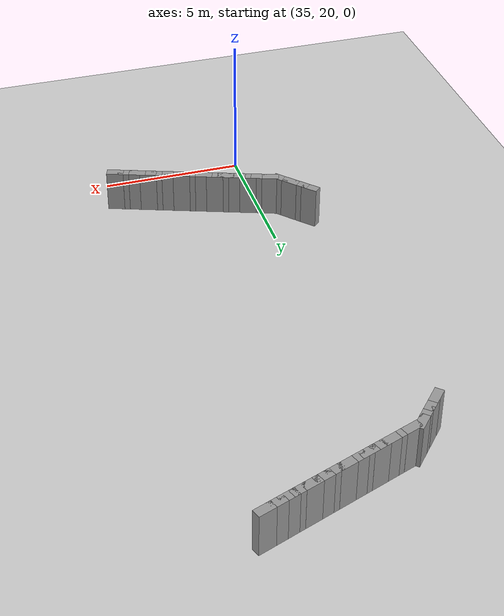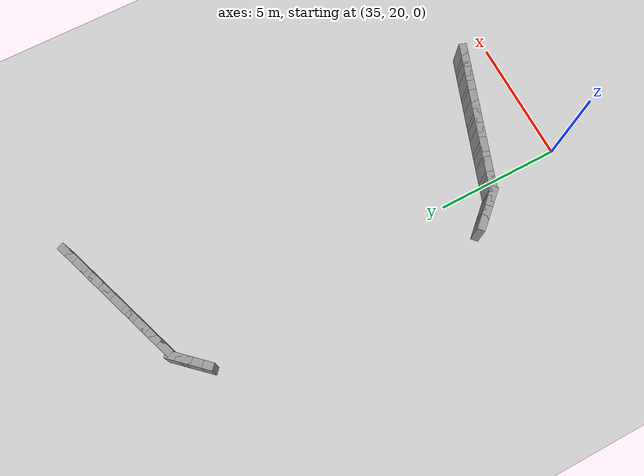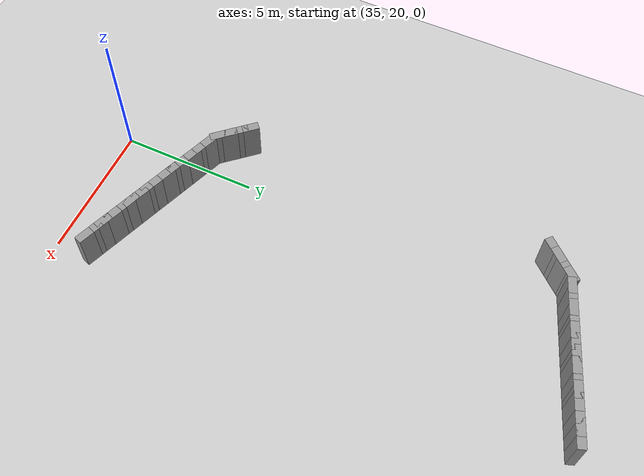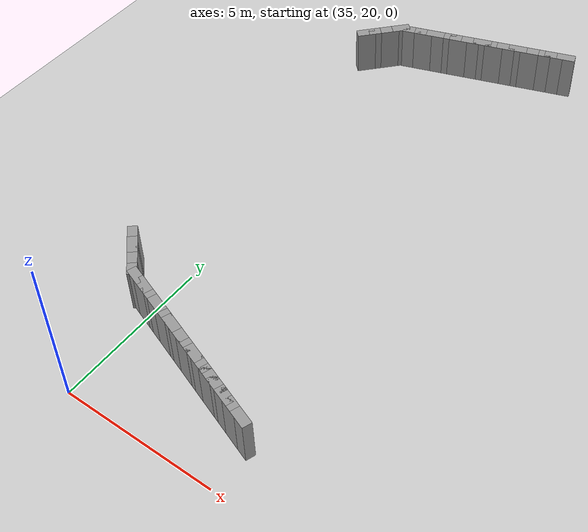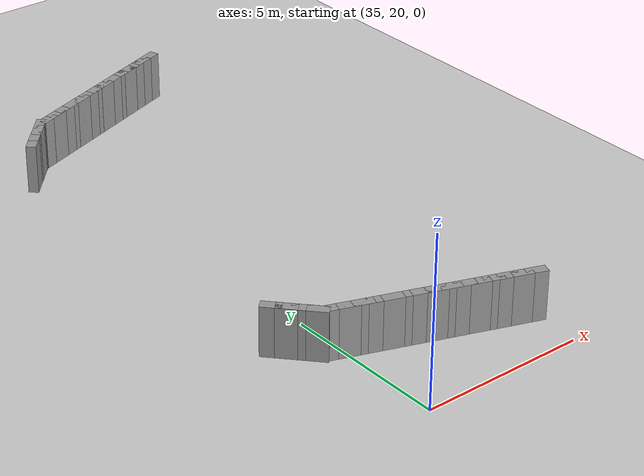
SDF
<sdf version="1.5">
 <world name="img_rect_obs">
  <include><uri>model://sun</uri></include>
  <include><uri>model://ground_plane</uri></include>
  <model name="wallL_23">
   <static>true</static>
   <pose>33.510 24.367 0.750 0 0 -0.829</pose>
   <link name="link">
    <collision name="col"><geometry><box><size>0.600 0.300 1.500</size></box></geometry></collision>
    <visual name="vis">
     <geometry><box><size>0.600 0.300 1.500</size></box></geometry>
     <material><ambient>0.6 0.6 0.6 1</ambient><diffuse>0.6 0.6 0.6 1</diffuse></material>
    </visual>
   </link>
  </model>
  <model name="wallL_24">
   <static>true</static>
   <pose>33.780 24.072 0.750 0 0 -0.829</pose>
   <link name="link">
    <collision name="col"><geometry><box><size>0.600 0.300 1.500</size></box></geometry></collision>
    <visual name="vis">
     <geometry><box><size>0.600 0.300 1.500</size></box></geometry>
     <material><ambient>0.6 0.6 0.6 1</ambient><diffuse>0.6 0.6 0.6 1</diffuse></material>
    </visual>
   </link>
  </model>
  <model name="wallL_25">
   <static>true</static>
   <pose>34.051 23.777 0.750 0 0 -0.829</pose>
   <link name="link">
    <collision name="col"><geometry><box><size>0.600 0.300 1.500</size></box></geometry></collision>
    <visual name="vis">
     <geometry><box><size>0.600 0.300 1.500</size></box></geometry>
     <material><ambient>0.6 0.6 0.6 1</ambient><diffuse>0.6 0.6 0.6 1</diffuse></material>
    </visual>
   </link>
  </model>
  <model name="wallL_26">
   <static>true</static>
   <pose>34.321 23.482 0.750 0 0 -0.829</pose>
   <link name="link">
    <collision name="col"><geometry><box><size>0.600 0.300 1.500</size></box></geometry></collision>
    <visual name="vis">
     <geometry><box><size>0.600 0.300 1.500</size></box></geometry>
     <material><ambient>0.6 0.6 0.6 1</ambient><diffuse>0.6 0.6 0.6 1</diffuse></material>
    </visual>
   </link>
  </model>
  <model name="wallL_27">
   <static>true</static>
   <pose>34.662 23.294 0.750 0 0 -0.343</pose>
   <link name="link">
    <collision name="col"><geometry><box><size>0.600 0.300 1.500</size></box></geometry></collision>
    <visual name="vis">
     <geometry><box><size>0.600 0.300 1.500</size></box></geometry>
     <material><ambient>0.6 0.6 0.6 1</ambient><diffuse>0.6 0.6 0.6 1</diffuse></material>
    </visual>
   </link>
  </model>
  <model name="wallL_28">
   <static>true</static>
   <pose>35.039 23.159 0.750 0 0 -0.343</pose>
   <link name="link">
    <collision name="col"><geometry><box><size>0.600 0.300 1.500</size></box></geometry></collision>
    <visual name="vis">
     <geometry><box><size>0.600 0.300 1.500</size></box></geometry>
     <material><ambient>0.6 0.6 0.6 1</ambient><diffuse>0.6 0.6 0.6 1</diffuse></material>
    </visual>
   </link>
  </model>
  <model name="wallL_29">
   <static>true</static>
   <pose>35.415 23.025 0.750 0 0 -0.343</pose>
   <link name="link">
    <collision name="col"><geometry><box><size>0.600 0.300 1.500</size></box></geometry></collision>
    <visual name="vis">
     <geometry><box><size>0.600 0.300 1.500</size></box></geometry>
     <material><ambient>0.6 0.6 0.6 1</ambient><diffuse>0.6 0.6 0.6 1</diffuse></material>
    </visual>
   </link>
  </model>
  <model name="wallL_30">
   <static>true</static>
   <pose>35.792 22.890 0.750 0 0 -0.343</pose>
   <link name="link">
    <collision name="col"><geometry><box><size>0.600 0.300 1.500</size></box></geometry></collision>
    <visual name="vis">
     <geometry><box><size>0.600 0.300 1.500</size></box></geometry>
     <material><ambient>0.6 0.6 0.6 1</ambient><diffuse>0.6 0.6 0.6 1</diffuse></material>
    </visual>
   </link>
  </model>
  <model name="wallL_31">
   <static>true</static>
   <pose>36.169 22.755 0.750 0 0 -0.343</pose>
   <link name="link">
    <collision name="col"><geometry><box><size>0.600 0.300 1.500</size></box></geometry></collision>
    <visual name="vis">
     <geometry><box><size>0.600 0.300 1.500</size></box></geometry>
     <material><ambient>0.6 0.6 0.6 1</ambient><diffuse>0.6 0.6 0.6 1</diffuse></material>
    </visual>
   </link>
  </model>
  <model name="wallL_32">
   <static>true</static>
   <pose>36.545 22.621 0.750 0 0 -0.343</pose>
   <link name="link">
    <collision name="col"><geometry><box><size>0.600 0.300 1.500</size></box></geometry></collision>
    <visual name="vis">
     <geometry><box><size>0.600 0.300 1.500</size></box></geometry>
     <material><ambient>0.6 0.6 0.6 1</ambient><diffuse>0.6 0.6 0.6 1</diffuse></material>
    </visual>
   </link>
  </model>
  <model name="wallL_33">
   <static>true</static>
   <pose>36.922 22.486 0.750 0 0 -0.343</pose>
   <link name="link">
    <collision name="col"><geometry><box><size>0.600 0.300 1.500</size></box></geometry></collision>
    <visual name="vis">
     <geometry><box><size>0.600 0.300 1.500</size></box></geometry>
     <material><ambient>0.6 0.6 0.6 1</ambient><diffuse>0.6 0.6 0.6 1</diffuse></material>
    </visual>
   </link>
  </model>
  <model name="wallL_34">
   <static>true</static>
   <pose>37.299 22.351 0.750 0 0 -0.343</pose>
   <link name="link">
    <collision name="col"><geometry><box><size>0.600 0.300 1.500</size></box></geometry></collision>
    <visual name="vis">
     <geometry><box><size>0.600 0.300 1.500</size></box></geometry>
     <material><ambient>0.6 0.6 0.6 1</ambient><diffuse>0.6 0.6 0.6 1</diffuse></material>
    </visual>
   </link>
  </model>
  <model name="wallL_35">
   <static>true</static>
   <pose>37.675 22.217 0.750 0 0 -0.343</pose>
   <link name="link">
    <collision name="col"><geometry><box><size>0.600 0.300 1.500</size></box></geometry></collision>
    <visual name="vis">
     <geometry><box><size>0.600 0.300 1.500</size></box></geometry>
     <material><ambient>0.6 0.6 0.6 1</ambient><diffuse>0.6 0.6 0.6 1</diffuse></material>
    </visual>
   </link>
  </model>
  <model name="wallL_36">
   <static>true</static>
   <pose>38.052 22.082 0.750 0 0 -0.343</pose>
   <link name="link">
    <collision name="col"><geometry><box><size>0.600 0.300 1.500</size></box></geometry></collision>
    <visual name="vis">
     <geometry><box><size>0.600 0.300 1.500</size></box></geometry>
     <material><ambient>0.6 0.6 0.6 1</ambient><diffuse>0.6 0.6 0.6 1</diffuse></material>
    </visual>
   </link>
  </model>
  <model name="wallL_37">
   <static>true</static>
   <pose>38.429 21.947 0.750 0 0 -0.343</pose>
   <link name="link">
    <collision name="col"><geometry><box><size>0.600 0.300 1.500</size></box></geometry></collision>
    <visual name="vis">
     <geometry><box><size>0.600 0.300 1.500</size></box></geometry>
     <material><ambient>0.6 0.6 0.6 1</ambient><diffuse>0.6 0.6 0.6 1</diffuse></material>
    </visual>
   </link>
  </model>
  <model name="wallL_38">
   <static>true</static>
   <pose>38.805 21.813 0.750 0 0 -0.343</pose>
   <link name="link">
    <collision name="col"><geometry><box><size>0.600 0.300 1.500</size></box></geometry></collision>
    <visual name="vis">
     <geometry><box><size>0.600 0.300 1.500</size></box></geometry>
     <material><ambient>0.6 0.6 0.6 1</ambient><diffuse>0.6 0.6 0.6 1</diffuse></material>
    </visual>
   </link>
  </model>
  <model name="wallL_39">
   <static>true</static>
   <pose>39.182 21.678 0.750 0 0 -0.343</pose>
   <link name="link">
    <collision name="col"><geometry><box><size>0.600 0.300 1.500</size></box></geometry></collision>
    <visual name="vis">
     <geometry><box><size>0.600 0.300 1.500</size></box></geometry>
     <material><ambient>0.6 0.6 0.6 1</ambient><diffuse>0.6 0.6 0.6 1</diffuse></material>
    </visual>
   </link>
  </model>
  <model name="wallL_40">
   <static>true</static>
   <pose>39.559 21.543 0.750 0 0 -0.343</pose>
   <link name="link">
    <collision name="col"><geometry><box><size>0.600 0.300 1.500</size></box></geometry></collision>
    <visual name="vis">
     <geometry><box><size>0.600 0.300 1.500</size></box></geometry>
     <material><ambient>0.6 0.6 0.6 1</ambient><diffuse>0.6 0.6 0.6 1</diffuse></material>
    </visual>
   </link>
  </model>
  <model name="wallL_41">
   <static>true</static>
   <pose>39.935 21.409 0.750 0 0 -0.343</pose>
   <link name="link">
    <collision name="col"><geometry><box><size>0.600 0.300 1.500</size></box></geometry></collision>
    <visual name="vis">
     <geometry><box><size>0.600 0.300 1.500</size></box></geometry>
     <material><ambient>0.6 0.6 0.6 1</ambient><diffuse>0.6 0.6 0.6 1</diffuse></material>
    </visual>
   </link>
  </model>
  <model name="wallL_163">
   <static>true</static>
   <pose>39.659 38.493 0.750 0 0 -2.798</pose>
   <link name="link">
    <collision name="col"><geometry><box><size>0.600 0.300 1.500</size></box></geometry></collision>
    <visual name="vis">
     <geometry><box><size>0.600 0.300 1.500</size></box></geometry>
     <material><ambient>0.6 0.6 0.6 1</ambient><diffuse>0.6 0.6 0.6 1</diffuse></material>
    </visual>
   </link>
  </model>
  <model name="wallL_164">
   <static>true</static>
   <pose>39.282 38.358 0.750 0 0 -2.798</pose>
   <link name="link">
    <collision name="col"><geometry><box><size>0.600 0.300 1.500</size></box></geometry></collision>
    <visual name="vis">
     <geometry><box><size>0.600 0.300 1.500</size></box></geometry>
     <material><ambient>0.6 0.6 0.6 1</ambient><diffuse>0.6 0.6 0.6 1</diffuse></material>
    </visual>
   </link>
  </model>
  <model name="wallL_165">
   <static>true</static>
   <pose>38.906 38.223 0.750 0 0 -2.798</pose>
   <link name="link">
    <collision name="col"><geometry><box><size>0.600 0.300 1.500</size></box></geometry></collision>
    <visual name="vis">
     <geometry><box><size>0.600 0.300 1.500</size></box></geometry>
     <material><ambient>0.6 0.6 0.6 1</ambient><diffuse>0.6 0.6 0.6 1</diffuse></material>
    </visual>
   </link>
  </model>
  <model name="wallL_166">
   <static>true</static>
   <pose>38.529 38.088 0.750 0 0 -2.798</pose>
   <link name="link">
    <collision name="col"><geometry><box><size>0.600 0.300 1.500</size></box></geometry></collision>
    <visual name="vis">
     <geometry><box><size>0.600 0.300 1.500</size></box></geometry>
     <material><ambient>0.6 0.6 0.6 1</ambient><diffuse>0.6 0.6 0.6 1</diffuse></material>
    </visual>
   </link>
  </model>
  <model name="wallL_167">
   <static>true</static>
   <pose>38.152 37.954 0.750 0 0 -2.798</pose>
   <link name="link">
    <collision name="col"><geometry><box><size>0.600 0.300 1.500</size></box></geometry></collision>
    <visual name="vis">
     <geometry><box><size>0.600 0.300 1.500</size></box></geometry>
     <material><ambient>0.6 0.6 0.6 1</ambient><diffuse>0.6 0.6 0.6 1</diffuse></material>
    </visual>
   </link>
  </model>
  <model name="wallL_168">
   <static>true</static>
   <pose>37.776 37.819 0.750 0 0 -2.798</pose>
   <link name="link">
    <collision name="col"><geometry><box><size>0.600 0.300 1.500</size></box></geometry></collision>
    <visual name="vis">
     <geometry><box><size>0.600 0.300 1.500</size></box></geometry>
     <material><ambient>0.6 0.6 0.6 1</ambient><diffuse>0.6 0.6 0.6 1</diffuse></material>
    </visual>
   </link>
  </model>
  <model name="wallL_169">
   <static>true</static>
   <pose>37.399 37.684 0.750 0 0 -2.798</pose>
   <link name="link">
    <collision name="col"><geometry><box><size>0.600 0.300 1.500</size></box></geometry></collision>
    <visual name="vis">
     <geometry><box><size>0.600 0.300 1.500</size></box></geometry>
     <material><ambient>0.6 0.6 0.6 1</ambient><diffuse>0.6 0.6 0.6 1</diffuse></material>
    </visual>
   </link>
  </model>
  <model name="wallL_170">
   <static>true</static>
   <pose>37.022 37.550 0.750 0 0 -2.798</pose>
   <link name="link">
    <collision name="col"><geometry><box><size>0.600 0.300 1.500</size></box></geometry></collision>
    <visual name="vis">
     <geometry><box><size>0.600 0.300 1.500</size></box></geometry>
     <material><ambient>0.6 0.6 0.6 1</ambient><diffuse>0.6 0.6 0.6 1</diffuse></material>
    </visual>
   </link>
  </model>
  <model name="wallL_171">
   <static>true</static>
   <pose>36.646 37.415 0.750 0 0 -2.798</pose>
   <link name="link">
    <collision name="col"><geometry><box><size>0.600 0.300 1.500</size></box></geometry></collision>
    <visual name="vis">
     <geometry><box><size>0.600 0.300 1.500</size></box></geometry>
     <material><ambient>0.6 0.6 0.6 1</ambient><diffuse>0.6 0.6 0.6 1</diffuse></material>
    </visual>
   </link>
  </model>
  <model name="wallL_172">
   <static>true</static>
   <pose>36.269 37.280 0.750 0 0 -2.798</pose>
   <link name="link">
    <collision name="col"><geometry><box><size>0.600 0.300 1.500</size></box></geometry></collision>
    <visual name="vis">
     <geometry><box><size>0.600 0.300 1.500</size></box></geometry>
     <material><ambient>0.6 0.6 0.6 1</ambient><diffuse>0.6 0.6 0.6 1</diffuse></material>
    </visual>
   </link>
  </model>
  <model name="wallL_173">
   <static>true</static>
   <pose>35.892 37.146 0.750 0 0 -2.798</pose>
   <link name="link">
    <collision name="col"><geometry><box><size>0.600 0.300 1.500</size></box></geometry></collision>
    <visual name="vis">
     <geometry><box><size>0.600 0.300 1.500</size></box></geometry>
     <material><ambient>0.6 0.6 0.6 1</ambient><diffuse>0.6 0.6 0.6 1</diffuse></material>
    </visual>
   </link>
  </model>
  <model name="wallL_174">
   <static>true</static>
   <pose>35.516 37.011 0.750 0 0 -2.798</pose>
   <link name="link">
    <collision name="col"><geometry><box><size>0.600 0.300 1.500</size></box></geometry></collision>
    <visual name="vis">
     <geometry><box><size>0.600 0.300 1.500</size></box></geometry>
     <material><ambient>0.6 0.6 0.6 1</ambient><diffuse>0.6 0.6 0.6 1</diffuse></material>
    </visual>
   </link>
  </model>
  <model name="wallL_175">
   <static>true</static>
   <pose>35.139 36.876 0.750 0 0 -2.798</pose>
   <link name="link">
    <collision name="col"><geometry><box><size>0.600 0.300 1.500</size></box></geometry></collision>
    <visual name="vis">
     <geometry><box><size>0.600 0.300 1.500</size></box></geometry>
     <material><ambient>0.6 0.6 0.6 1</ambient><diffuse>0.6 0.6 0.6 1</diffuse></material>
    </visual>
   </link>
  </model>
  <model name="wallL_176">
   <static>true</static>
   <pose>34.762 36.742 0.750 0 0 -2.798</pose>
   <link name="link">
    <collision name="col"><geometry><box><size>0.600 0.300 1.500</size></box></geometry></collision>
    <visual name="vis">
     <geometry><box><size>0.600 0.300 1.500</size></box></geometry>
     <material><ambient>0.6 0.6 0.6 1</ambient><diffuse>0.6 0.6 0.6 1</diffuse></material>
    </visual>
   </link>
  </model>
  <model name="wallL_177">
   <static>true</static>
   <pose>34.393 36.597 0.750 0 0 -2.312</pose>
   <link name="link">
    <collision name="col"><geometry><box><size>0.600 0.300 1.500</size></box></geometry></collision>
    <visual name="vis">
     <geometry><box><size>0.600 0.300 1.500</size></box></geometry>
     <material><ambient>0.6 0.6 0.6 1</ambient><diffuse>0.6 0.6 0.6 1</diffuse></material>
    </visual>
   </link>
  </model>
  <model name="wallL_178">
   <static>true</static>
   <pose>34.123 36.302 0.750 0 0 -2.312</pose>
   <link name="link">
    <collision name="col"><geometry><box><size>0.600 0.300 1.500</size></box></geometry></collision>
    <visual name="vis">
     <geometry><box><size>0.600 0.300 1.500</size></box></geometry>
     <material><ambient>0.6 0.6 0.6 1</ambient><diffuse>0.6 0.6 0.6 1</diffuse></material>
    </visual>
   </link>
  </model>
  <model name="wallL_179">
   <static>true</static>
   <pose>33.852 36.007 0.750 0 0 -2.312</pose>
   <link name="link">
    <collision name="col"><geometry><box><size>0.600 0.300 1.500</size></box></geometry></collision>
    <visual name="vis">
     <geometry><box><size>0.600 0.300 1.500</size></box></geometry>
     <material><ambient>0.6 0.6 0.6 1</ambient><diffuse>0.6 0.6 0.6 1</diffuse></material>
    </visual>
   </link>
  </model>
  <model name="wallL_180">
   <static>true</static>
   <pose>33.582 35.712 0.750 0 0 -2.312</pose>
   <link name="link">
    <collision name="col"><geometry><box><size>0.600 0.300 1.500</size></box></geometry></collision>
    <visual name="vis">
     <geometry><box><size>0.600 0.300 1.500</size></box></geometry>
     <material><ambient>0.6 0.6 0.6 1</ambient><diffuse>0.6 0.6 0.6 1</diffuse></material>
    </visual>
   </link>
  </model>
 </world>
</sdf>
